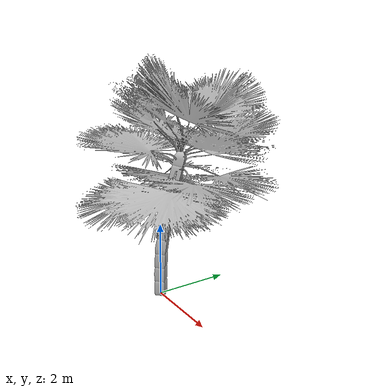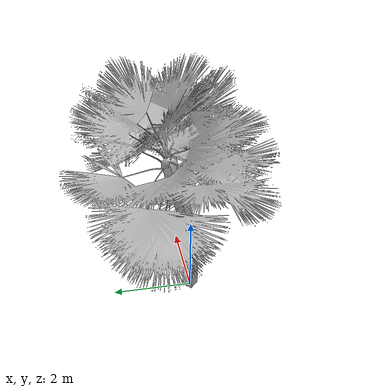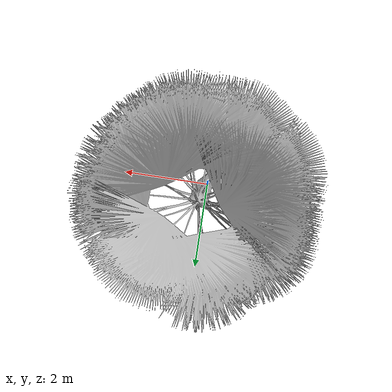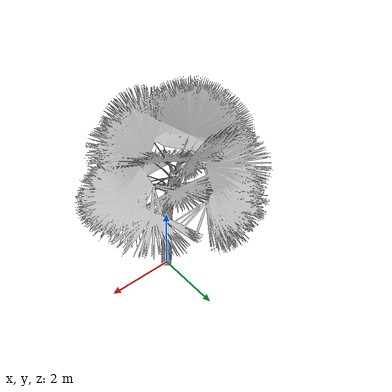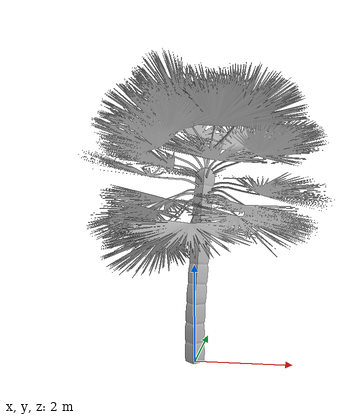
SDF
<?xml version="1.0"?>
<sdf version='1.3'>
	<model name="fanPalm">
		<pose>0 0 0 0 0 0</pose>
		<static>true</static>
		<allow_auto_disable>true</allow_auto_disable>
		<link name="link">
			<pose>0 0 0 1.57 0 0</pose>
			<inertial>
				<mass>10</mass>
				<pose>0 0 0 0 0 0</pose>
				<inertia>
					<ixx>1</ixx>
					<ixy>0</ixy>
					<ixz>0</ixz>
					<iyy>1</iyy>
					<iyz>0</iyz>
					<izz>1</izz>
				</inertia>
			</inertial>
			<visual name="visual">
				<geometry>
					<mesh>
						<uri>model://trees/fanPalm/meshes/fanPalm.dae</uri>
					</mesh>
				</geometry>
			</visual>
		</link>
	</model>
</sdf>
